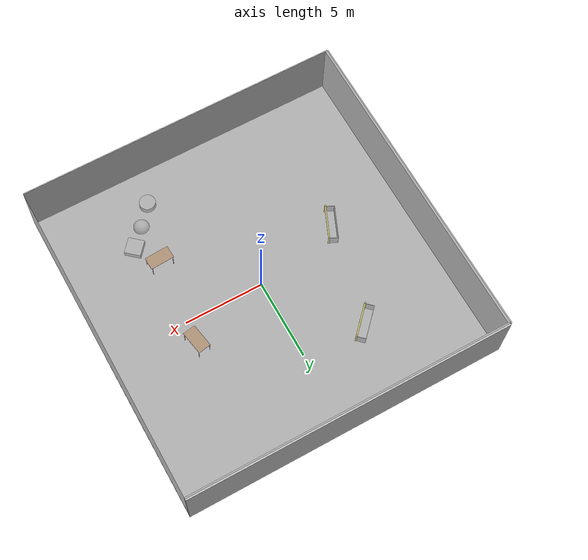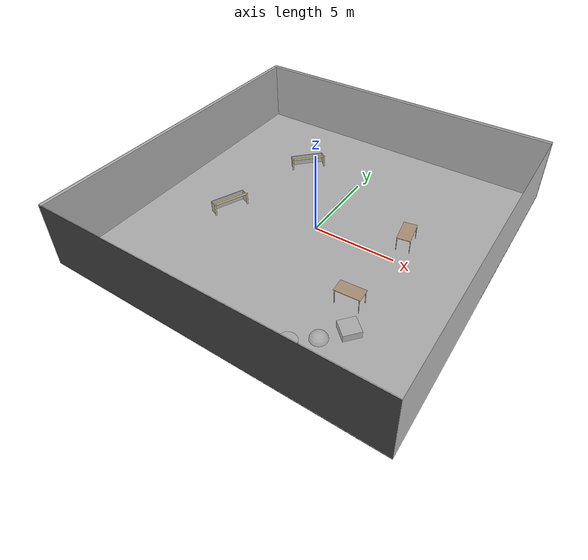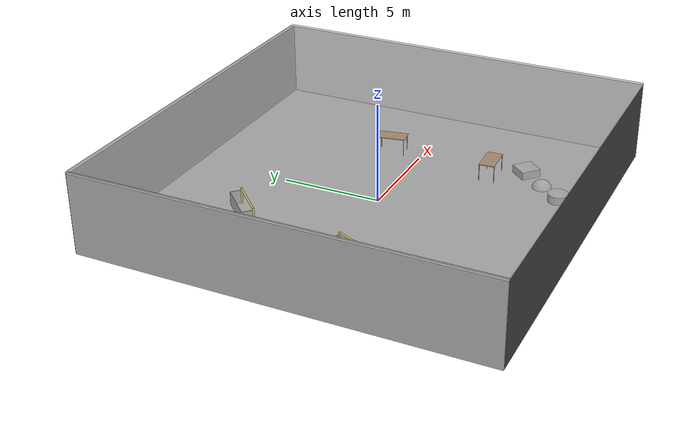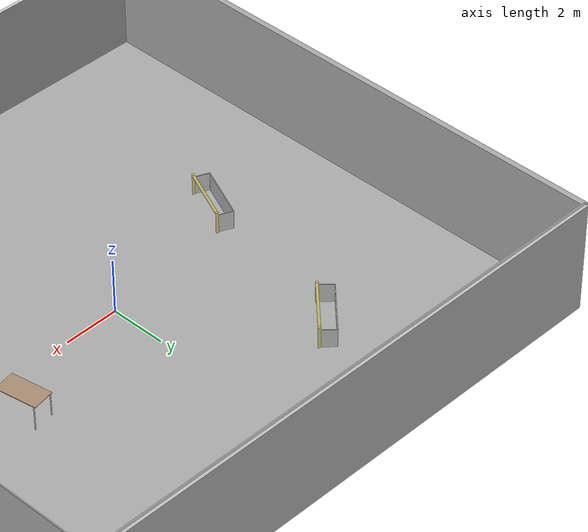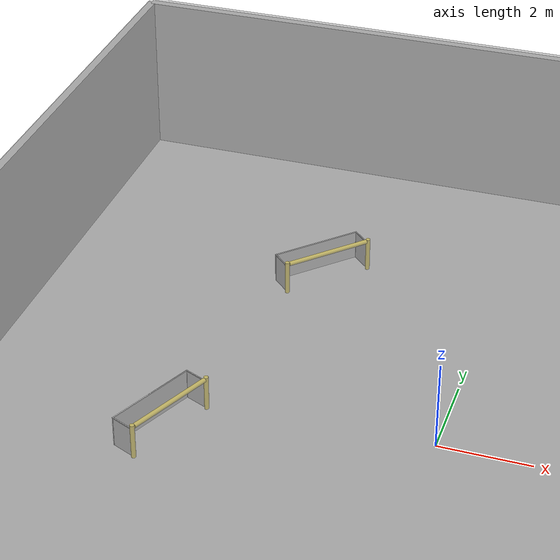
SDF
<sdf version="1.4">
 <world name="default">
  <physics type="ode">
   <max_step_size>0.001</max_step_size>
   <real_time_factor>1</real_time_factor>
   <real_time_update_rate>1000</real_time_update_rate>
   <gravity>0 0 -9.8</gravity>
  </physics>
  <scene><ambient>0.4 0.4 0.4 1</ambient><background>0.7 0.7 0.7 1</background><shadows>1</shadows></scene>
  <model name="Surrounding">
   <static>1</static>
   <link name="Ceiling">
    <collision name="Ceiling_Collision"><geometry><box><size>20 20 0.1</size></box></geometry></collision>
    <visual name="Ceiling_Visual">
     <geometry><box><size>20 20 0.1</size></box></geometry>
     <material>
      <script><uri>file://media/materials/scripts/gazebo.material</uri><name>Gazebo/GreyTransparent</name></script>
     </material>
    </visual>
    <pose>0 0 4.05 0 0 0</pose>
   </link>
   <link name="Wall_South">
    <collision name="Wall_South_Collision">
     <geometry><box><size>20 0 4</size></box></geometry>
     <pose>0 0 2 0 -0 0</pose>
    </collision>
    <visual name="Wall_South_Visual">
     <pose>0 0 2 0 -0 0</pose>
     <geometry><box><size>20 0 4</size></box></geometry>
     <material>
      <script><uri>file://media/materials/scripts/gazebo.material</uri><name>Gazebo/DarkGrey</name></script>
     </material>
    </visual>
    <velocity_decay><linear>0</linear><angular>0</angular></velocity_decay>
    <pose>0 -10 0 0 -0 0</pose>
   </link>
   <link name="Wall_East">
    <collision name="Wall_21_Collision">
     <geometry><box><size>20 0 4</size></box></geometry>
     <pose>0 0 2 0 -0 0</pose>
    </collision>
    <visual name="Wall_21_Visual">
     <pose>0 0 2 0 -0 0</pose>
     <geometry><box><size>20 0 4</size></box></geometry>
     <material>
      <script><uri>file://media/materials/scripts/gazebo.material</uri><name>Gazebo/White</name></script>
     </material>
    </visual>
    <velocity_decay><linear>0</linear><angular>0</angular></velocity_decay>
    <pose>10 0 0 0 -0 1.5708</pose>
   </link>
   <link name="Wall_North">
    <collision name="Wall_22_Collision">
     <geometry><box><size>20 0.2 4</size></box></geometry>
     <pose>0 0 2 0 -0 0</pose>
    </collision>
    <visual name="Wall_22_Visual">
     <pose>0 0 2 0 -0 0</pose>
     <geometry><box><size>20 0.2 4</size></box></geometry>
     <material>
      <script><uri>file://media/materials/scripts/gazebo.material</uri><name>Gazebo/CloudySky</name></script>
     </material>
    </visual>
    <velocity_decay><linear>0</linear><angular>0</angular></velocity_decay>
    <pose>0 10 0 0 -0 0</pose>
   </link>
   <link name="Wall_West">
    <collision name="Wall_23_Collision">
     <geometry><box><size>20 0.2 4</size></box></geometry>
     <pose>0 0 2 0 -0 0</pose>
    </collision>
    <visual name="Wall_23_Visual">
     <pose>0 0 2 0 -0 0</pose>
     <geometry><box><size>20 0.2 4</size></box></geometry>
     <material>
      <script><uri>file://media/materials/scripts/gazebo.material</uri><name>Gazebo/LightOff</name></script>
     </material>
    </visual>
    <velocity_decay><linear>0</linear><angular>0</angular></velocity_decay>
    <pose>-10 0 0 0 0 -1.5708</pose>
   </link>
   <link name="Ground_link">
    <collision name="collision">
     <pose>0 0 .05 0 -0 0</pose>
     <geometry><box><size>20 20 0.1</size></box></geometry>
    </collision>
    <visual name="visual">
     <pose>0 0 .05 0 -0 0</pose>
     <geometry><box><size>20 20 0.1</size></box></geometry>
     <material>
      <script><uri>file://media/materials/scripts/gazebo.material</uri><name>Gazebo/Pioneer2Body</name></script>
     </material>
    </visual>
   </link>
   <static>1</static>
  </model>
  <spherical_coordinates>
   <surface_model>EARTH_WGS84</surface_model>
   <latitude_deg>0</latitude_deg>
   <longitude_deg>0</longitude_deg>
   <elevation>0</elevation>
   <heading_deg>0</heading_deg>
  </spherical_coordinates>
  <light name="lightball_0" type="diffuse">
   <diffuse>0.8 0.8 0.8 1</diffuse>
   <specular>0.2 0.2 0.2 1</specular>
   <attenuation>
    <range>100</range>
    <constant>0.7</constant>
    <linear>0.01</linear>
    <quadratic>0.001</quadratic>
   </attenuation>
   <direction>-0.5 0.1 -0.9</direction>
   <pose>8.54820259268 2.59957610486 3.55950023618 0 0 0</pose>
  </light>
  <light name="lightball_1" type="diffuse">
   <diffuse>0.8 0.8 0.8 1</diffuse>
   <specular>0.2 0.2 0.2 1</specular>
   <attenuation>
    <range>100</range>
    <constant>0.7</constant>
    <linear>0.01</linear>
    <quadratic>0.001</quadratic>
   </attenuation>
   <direction>-0.5 0.1 -0.9</direction>
   <pose>-7.63010920965 7.02000450122 3.49080737076 0 0 0</pose>
  </light>
  <light name="lightball_2" type="diffuse">
   <diffuse>0.8 0.8 0.8 1</diffuse>
   <specular>0.2 0.2 0.2 1</specular>
   <attenuation>
    <range>100</range>
    <constant>0.7</constant>
    <linear>0.01</linear>
    <quadratic>0.001</quadratic>
   </attenuation>
   <direction>-0.5 0.1 -0.9</direction>
   <pose>-8.30929765195 0.965787535475 1.5916087867 0 0 0</pose>
  </light>
  <light name="lightball_3" type="diffuse">
   <diffuse>0.8 0.8 0.8 1</diffuse>
   <specular>0.2 0.2 0.2 1</specular>
   <attenuation>
    <range>100</range>
    <constant>0.7</constant>
    <linear>0.01</linear>
    <quadratic>0.001</quadratic>
   </attenuation>
   <direction>-0.5 0.1 -0.9</direction>
   <pose>-7.68503105821 -8.56459740222 1.11267799795 0 0 0</pose>
  </light>
  <light name="lightball_4" type="diffuse">
   <diffuse>0.8 0.8 0.8 1</diffuse>
   <specular>0.2 0.2 0.2 1</specular>
   <attenuation>
    <range>100</range>
    <constant>0.7</constant>
    <linear>0.01</linear>
    <quadratic>0.001</quadratic>
   </attenuation>
   <direction>-0.5 0.1 -0.9</direction>
   <pose>-5.33158514779 -5.30786652086 1.74967021993 0 0 0</pose>
  </light>
  <light name="lightball_5" type="diffuse">
   <diffuse>0.8 0.8 0.8 1</diffuse>
   <specular>0.2 0.2 0.2 1</specular>
   <attenuation>
    <range>100</range>
    <constant>0.7</constant>
    <linear>0.01</linear>
    <quadratic>0.001</quadratic>
   </attenuation>
   <direction>-0.5 0.1 -0.9</direction>
   <pose>-6.68496310644 7.45126058603 3.33587041838 0 0 0</pose>
  </light>
  <light name="lightball_6" type="diffuse">
   <diffuse>0.8 0.8 0.8 1</diffuse>
   <specular>0.2 0.2 0.2 1</specular>
   <attenuation>
    <range>100</range>
    <constant>0.7</constant>
    <linear>0.01</linear>
    <quadratic>0.001</quadratic>
   </attenuation>
   <direction>-0.5 0.1 -0.9</direction>
   <pose>-8.50117415737 0.535283201022 2.9266145239 0 0 0</pose>
  </light>
  <light name="lightball_7" type="diffuse">
   <diffuse>0.8 0.8 0.8 1</diffuse>
   <specular>0.2 0.2 0.2 1</specular>
   <attenuation>
    <range>100</range>
    <constant>0.7</constant>
    <linear>0.01</linear>
    <quadratic>0.001</quadratic>
   </attenuation>
   <direction>-0.5 0.1 -0.9</direction>
   <pose>-5.71318582287 -2.52993416218 2.47586708602 0 0 0</pose>
  </light>
  <light name="lightball_8" type="diffuse">
   <diffuse>0.8 0.8 0.8 1</diffuse>
   <specular>0.2 0.2 0.2 1</specular>
   <attenuation>
    <range>100</range>
    <constant>0.7</constant>
    <linear>0.01</linear>
    <quadratic>0.001</quadratic>
   </attenuation>
   <direction>-0.5 0.1 -0.9</direction>
   <pose>7.32909138235 3.14087549911 0.650518625219 0 0 0</pose>
  </light>
  <light name="lightball_9" type="diffuse">
   <diffuse>0.8 0.8 0.8 1</diffuse>
   <specular>0.2 0.2 0.2 1</specular>
   <attenuation>
    <range>100</range>
    <constant>0.7</constant>
    <linear>0.01</linear>
    <quadratic>0.001</quadratic>
   </attenuation>
   <direction>-0.5 0.1 -0.9</direction>
   <pose>6.98189289204 6.98687753818 2.60988493454 0 0 0</pose>
  </light>
  <light name="lightball_10" type="diffuse">
   <diffuse>0.8 0.8 0.8 1</diffuse>
   <specular>0.2 0.2 0.2 1</specular>
   <attenuation>
    <range>100</range>
    <constant>0.7</constant>
    <linear>0.01</linear>
    <quadratic>0.001</quadratic>
   </attenuation>
   <direction>-0.5 0.1 -0.9</direction>
   <pose>-8.40708379387 -7.96765061827 2.76668897698 0 0 0</pose>
  </light>
  <light name="lightball_11" type="diffuse">
   <diffuse>0.8 0.8 0.8 1</diffuse>
   <specular>0.2 0.2 0.2 1</specular>
   <attenuation>
    <range>100</range>
    <constant>0.7</constant>
    <linear>0.01</linear>
    <quadratic>0.001</quadratic>
   </attenuation>
   <direction>-0.5 0.1 -0.9</direction>
   <pose>1.37679114169 -1.95139777782 2.10337406811 0 0 0</pose>
  </light>
  <light name="lightball_12" type="diffuse">
   <diffuse>0.8 0.8 0.8 1</diffuse>
   <specular>0.2 0.2 0.2 1</specular>
   <attenuation>
    <range>100</range>
    <constant>0.7</constant>
    <linear>0.01</linear>
    <quadratic>0.001</quadratic>
   </attenuation>
   <direction>-0.5 0.1 -0.9</direction>
   <pose>0.119839944703 8.97275349744 3.23742921908 0 0 0</pose>
  </light>
  <include>
   <uri>model://robocup_3Dsim_goal</uri>
   <pose>-5.20260700499 -1.35972846717 0 0 0 2.72904418275</pose>
  </include>
  <include>
   <uri>model://robocup_3Dsim_goal</uri>
   <pose>-3.79310136089 4.93877784241 0 0 0 2.37046539727</pose>
  </include>
  <include>
   <uri>model://textured_shapes</uri>
   <pose>4.49953679882 -6.7237357402 0 0 0 2.4193387547</pose>
  </include>
  <include><uri>model://table</uri><pose>4.59569743331 -4.01949591662 0 0 0 0.0534701981557</pose></include>
  <include><uri>model://table</uri><pose>5.02985594791 1.51757515253 0 0 0 1.74157998331</pose></include>
 </world>
</sdf>

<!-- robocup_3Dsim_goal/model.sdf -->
<sdf version="1.5">
  <model name="robocup_3d_goal">
    <static>true</static>
    <link name="left_post">
      <pose>0 1.05 0.45 0 0 0</pose>
      <collision name="collision">
        <geometry>
          <cylinder>
            <radius>0.05</radius>
            <length>0.9</length>
          </cylinder>
        </geometry>
      </collision>
      <visual name="visual">
        <geometry>
          <cylinder>
            <radius>0.05</radius>
            <length>0.9</length>
          </cylinder>
        </geometry>
        <material>
          <script>
            <uri>file://media/materials/scripts/gazebo.material</uri>
            <name>Gazebo/ZincYellow</name>
          </script>
        </material>
      </visual>
    </link>
    <link name="left_support_horiz_lower">
      <pose>0.30 1.05 0.01 0 0 0</pose>
      <collision name="collision">
        <geometry>
          <box>
            <size>0.50 0.02 0.02</size>
          </box>
        </geometry>
      </collision>
      <visual name="visual">
        <geometry>
          <box>
            <size>0.50 0.02 0.02</size>
          </box>
        </geometry>
        <material>
          <script>
            <uri>file://media/materials/scripts/gazebo.material</uri>
            <name>Gazebo/White</name>
          </script>
        </material>
      </visual>
    </link>
    <link name="left_support_horiz_upper">
      <pose>0.30 1.05 0.79 0 0 0</pose>
      <collision name="collision">
        <geometry>
          <box>
            <size>0.50 0.02 0.02</size>
          </box>
        </geometry>
      </collision>
      <visual name="visual">
        <geometry>
          <box>
            <size>0.50 0.02 0.02</size>
          </box>
        </geometry>
        <material>
          <script>
            <uri>file://media/materials/scripts/gazebo.material</uri>
            <name>Gazebo/White</name>
          </script>
        </material>
      </visual>
    </link>
    <link name="left_support_vertical">
      <pose>0.56 1.05 0.4 0 1.5708 0</pose>
      <collision name="collision">
        <geometry>
          <box>
            <size>0.80 0.02 0.02</size>
          </box>
        </geometry>
      </collision>
      <visual name="visual">
        <geometry>
          <box>
            <size>0.80 0.02 0.02</size>
          </box>
        </geometry>
        <material>
          <script>
            <uri>file://media/materials/scripts/gazebo.material</uri>
            <name>Gazebo/White</name>
          </script>
        </material>
      </visual>
    </link>
    <link name="right_support_horiz_lower">
      <pose>0.30 -1.05 0.01 0 0 0</pose>
      <collision name="collision">
        <geometry>
          <box>
            <size>0.50 0.02 0.02</size>
          </box>
        </geometry>
      </collision>
      <visual name="visual">
        <geometry>
          <box>
            <size>0.50 0.02 0.02</size>
          </box>
        </geometry>
        <material>
          <script>
            <uri>file://media/materials/scripts/gazebo.material</uri>
            <name>Gazebo/White</name>
          </script>
        </material>
      </visual>
    </link>
    <link name="right_support_horiz_upper">
      <pose>0.30 -1.05 0.79 0 0 0</pose>
      <collision name="collision">
        <geometry>
          <box>
            <size>0.50 0.02 0.02</size>
          </box>
        </geometry>
      </collision>
      <visual name="visual">
        <geometry>
          <box>
            <size>0.50 0.02 0.02</size>
          </box>
        </geometry>
        <material>
          <script>
            <uri>file://media/materials/scripts/gazebo.material</uri>
            <name>Gazebo/White</name>
          </script>
        </material>
      </visual>
    </link>
    <link name="right_support_vertical">
      <pose>0.56 -1.05 0.4 0 1.5708 0</pose>
      <collision name="collision">
        <geometry>
          <box>
            <size>0.80 0.02 0.02</size>
          </box>
        </geometry>
      </collision>
      <visual name="visual">
        <geometry>
          <box>
            <size>0.80 0.02 0.02</size>
          </box>
        </geometry>
        <material>
          <script>
            <uri>file://media/materials/scripts/gazebo.material</uri>
            <name>Gazebo/White</name>
          </script>
        </material>
      </visual>
    </link>
    <link name="center_support_horiz_lower">
      <pose>0.56 0 0.01 0 1.5708 0</pose>
      <collision name="collision">
        <geometry>
          <box>
            <size>0.02 2.08 0.02</size>
          </box>
        </geometry>
      </collision>
      <visual name="visual">
        <geometry>
          <box>
            <size>0.02 2.08 0.02</size>
          </box>
        </geometry>
        <material>
          <script>
            <uri>file://media/materials/scripts/gazebo.material</uri>
            <name>Gazebo/White</name>
          </script>
        </material>
      </visual>
    </link>
    <link name="center_support_horiz_upper">
      <pose>0.56 0 0.79 0 1.5708 0</pose>
      <collision name="collision">
        <geometry>
          <box>
            <size>0.02 2.08 0.02</size>
          </box>
        </geometry>
      </collision>
      <visual name="visual">
        <geometry>
          <box>
            <size>0.02 2.08 0.02</size>
          </box>
        </geometry>
        <material>
          <script>
            <uri>file://media/materials/scripts/gazebo.material</uri>
            <name>Gazebo/White</name>
          </script>
        </material>
      </visual>
    </link>
    <link name="right_post">
      <pose>0 -1.05 0.45 0 0 0</pose>
      <collision name="collision">
        <geometry>
          <cylinder>
            <radius>0.05</radius>
            <length>0.9</length>
          </cylinder>
        </geometry>
      </collision>
      <visual name="visual">
        <geometry>
          <cylinder>
            <radius>0.05</radius>
            <length>0.9</length>
          </cylinder>
        </geometry>
        <material>
          <script>
            <uri>file://media/materials/scripts/gazebo.material</uri>
            <name>Gazebo/ZincYellow</name>
          </script>
        </material>
      </visual>
    </link>
    <link name="crossbar">
      <pose>0 0 0.85 1.57 1.57 0</pose>
      <collision name="collision">
        <geometry>
          <cylinder>
            <radius>0.05</radius>
            <length>2.0</length>
          </cylinder>
        </geometry>
      </collision>
      <visual name="visual">
        <geometry>
          <cylinder>
            <radius>0.05</radius>
            <length>2.0</length>
          </cylinder>
        </geometry>
        <material>
          <script>
            <uri>file://media/materials/scripts/gazebo.material</uri>
            <name>Gazebo/ZincYellow</name>
          </script>
        </material>
      </visual>
    </link>
    <link name="center_net">
      <pose>0.56 0 0.40 0 0 0</pose>
      <collision name="collision">
        <geometry>
          <box>
            <size>0.01 2.1 0.80</size>
          </box>
        </geometry>
      </collision>
      <visual name="visual">
        <geometry>
          <box>
            <size>0.01 2.1 0.80</size>
          </box>
        </geometry>
        <material>
          <script>
            <uri>model://../model_source/models/robocup09_spl_field/materials/scripts/</uri>
            <uri>model://../model_source/models/robocup09_spl_field/materials/textures/</uri>
            <name>RoboCup/Net</name>
          </script>
        </material>
      </visual>
    </link>
    <link name="left_net">
      <pose>0.30 1.05 0.40 0 0 0</pose>
      <collision name="collision">
        <geometry>
          <box>
            <size>0.50 0.01 0.76</size>
          </box>
        </geometry>
      </collision>
      <visual name="visual">
        <geometry>
          <box>
            <size>0.50 0.01 0.76</size>
          </box>
        </geometry>
        <material>
          <script>
            <uri>model://../model_source/models/robocup09_spl_field/materials/scripts/</uri>
            <uri>model://../model_source/models/robocup09_spl_field/materials/textures/</uri>
            <name>RoboCup/Net</name>
          </script>
        </material>
      </visual>
    </link>
    <link name="right_net">
      <pose>0.30 -1.05 0.40 0 0 0</pose>
      <collision name="collision">
        <geometry>
          <box>
            <size>0.50 0.01 0.76</size>
          </box>
        </geometry>
      </collision>
      <visual name="visual">
        <geometry>
          <box>
            <size>0.50 0.01 0.76</size>
          </box>
        </geometry>
        <material>
          <script>
            <uri>model://../model_source/models/robocup09_spl_field/materials/scripts/</uri>
            <uri>model://../model_source/models/robocup09_spl_field/materials/textures/</uri>
            <name>RoboCup/Net</name>
          </script>
        </material>
      </visual>
    </link>
  </model>
</sdf>

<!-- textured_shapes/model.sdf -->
<sdf version="1.6">
  <model name="textured_shapes">
    <pose>0 0 0.5 0 0 0</pose>
    <link name="box">
      <pose>0 -1.5 0 0 0 0</pose>
      <collision name="collision">
        <geometry>
          <box>
            <size>1 1 1</size>
          </box>
        </geometry>
      </collision>
      <visual name="visual">
        <geometry>
          <box>
            <size>1 1 1</size>
          </box>
        </geometry>
        <material>
          <script>
            <uri>model://../model_source/models/textured_shapes/materials/scripts</uri>
            <uri>model://../model_source/models/textured_shapes/materials/textures</uri>
            <name>TexturedShape/Squares</name>
          </script>
        </material>
      </visual>
    </link>
    <link name="sphere">
      <collision name="collision">
        <geometry>
          <sphere>
            <radius>0.5</radius>
          </sphere>
        </geometry>
      </collision>
      <visual name="visual">
        <geometry>
          <sphere>
            <radius>0.5</radius>
          </sphere>
        </geometry>
        <material>
          <script>
            <uri>model://../model_source/models/textured_shapes/materials/scripts</uri>
            <uri>model://../model_source/models/textured_shapes/materials/textures</uri>
            <name>TexturedShape/Squares</name>
          </script>
        </material>
      </visual>
    </link>
    <link name="cylinder">
      <pose>0 1.5 0 0 0 0</pose>
      <collision name="collision">
        <geometry>
          <cylinder>
            <radius>0.5</radius>
            <length>1</length>
          </cylinder>
        </geometry>
      </collision>
      <visual name="visual">
        <geometry>
          <cylinder>
            <radius>0.5</radius>
            <length>1</length>
          </cylinder>
        </geometry>
        <material>
          <script>
            <uri>model://../model_source/models/textured_shapes/materials/scripts</uri>
            <uri>model://../model_source/models/textured_shapes/materials/textures</uri>
            <name>TexturedShape/Squares</name>
          </script>
        </material>
      </visual>
    </link>
  </model>
</sdf>

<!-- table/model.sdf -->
<sdf version="1.5">
  <model name="table">
    <static>true</static>
    <link name="link">
      <collision name="surface">
        <pose>0 0 1.0 0 0 0</pose>
        <geometry>
          <box>
            <size>1.5 0.8 0.03</size>
          </box>
        </geometry>
        <surface>
          <friction>
            <ode>
              <mu>0.6</mu>
              <mu2>0.6</mu2>
            </ode>
          </friction>
        </surface>
      </collision>
      <visual name="visual1">
        <pose>0 0 1.0 0 0 0</pose>
        <geometry>
          <box>
            <size>1.5 0.8 0.03</size>
          </box>
        </geometry>
        <material>
          <script>
            <uri>model://media/materials/scripts/gazebo.material</uri>
            <name>Gazebo/Wood</name>
          </script>
        </material>
      </visual>
      <collision name="front_left_leg">
        <pose>0.68 0.38 0.5 0 0 0</pose>
        <geometry>
          <cylinder>
            <radius>0.02</radius>
            <length>1.0</length>
          </cylinder>
        </geometry>
      </collision>
      <visual name="front_left_leg">
        <pose>0.68 0.38 0.5 0 0 0</pose>
        <geometry>
          <cylinder>
            <radius>0.02</radius>
            <length>1.0</length>
          </cylinder>
        </geometry>
        <material>
          <script>
            <uri>model://media/materials/scripts/gazebo.material</uri>
            <name>Gazebo/Grey</name>
          </script>
        </material>
      </visual>
      <collision name="front_right_leg">
        <pose>0.68 -0.38 0.5 0 0 0</pose>
        <geometry>
          <cylinder>
            <radius>0.02</radius>
            <length>1.0</length>
          </cylinder>
        </geometry>
      </collision>
      <visual name="front_right_leg">
        <pose>0.68 -0.38 0.5 0 0 0</pose>
        <geometry>
          <cylinder>
            <radius>0.02</radius>
            <length>1.0</length>
          </cylinder>
        </geometry>
        <material>
          <script>
            <uri>model://media/materials/scripts/gazebo.material</uri>
            <name>Gazebo/Grey</name>
          </script>
        </material>
      </visual>
      <collision name="back_right_leg">
        <pose>-0.68 -0.38 0.5 0 0 0</pose>
        <geometry>
          <cylinder>
            <radius>0.02</radius>
            <length>1.0</length>
          </cylinder>
        </geometry>
      </collision>
      <visual name="back_right_leg">
        <pose>-0.68 -0.38 0.5 0 0 0</pose>
        <geometry>
          <cylinder>
            <radius>0.02</radius>
            <length>1.0</length>
          </cylinder>
        </geometry>
        <material>
          <script>
            <uri>model://media/materials/scripts/gazebo.material</uri>
            <name>Gazebo/Grey</name>
          </script>
        </material>
      </visual>
      <collision name="back_left_leg">
        <pose>-0.68 0.38 0.5 0 0 0</pose>
        <geometry>
          <cylinder>
            <radius>0.02</radius>
            <length>1.0</length>
          </cylinder>
        </geometry>
      </collision>
      <visual name="back_left_leg">
        <pose>-0.68 0.38 0.5 0 0 0</pose>
        <geometry>
          <cylinder>
            <radius>0.02</radius>
            <length>1.0</length>
          </cylinder>
        </geometry>
        <material>
          <script>
            <uri>model://media/materials/scripts/gazebo.material</uri>
            <name>Gazebo/Grey</name>
          </script>
        </material>
      </visual>
    </link>
  </model>
</sdf>
